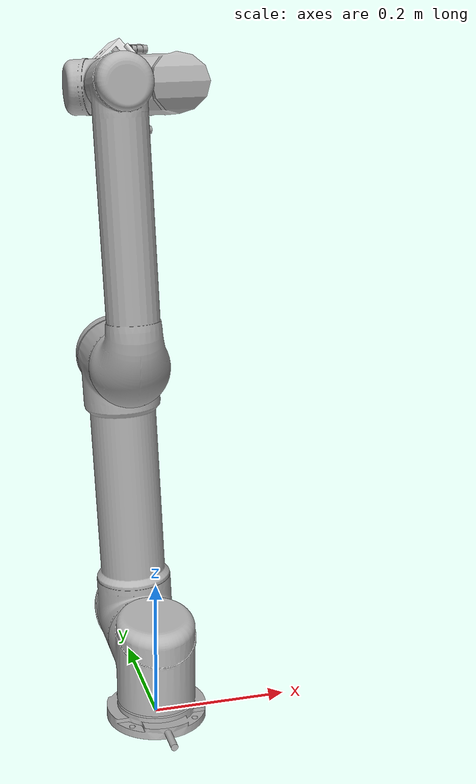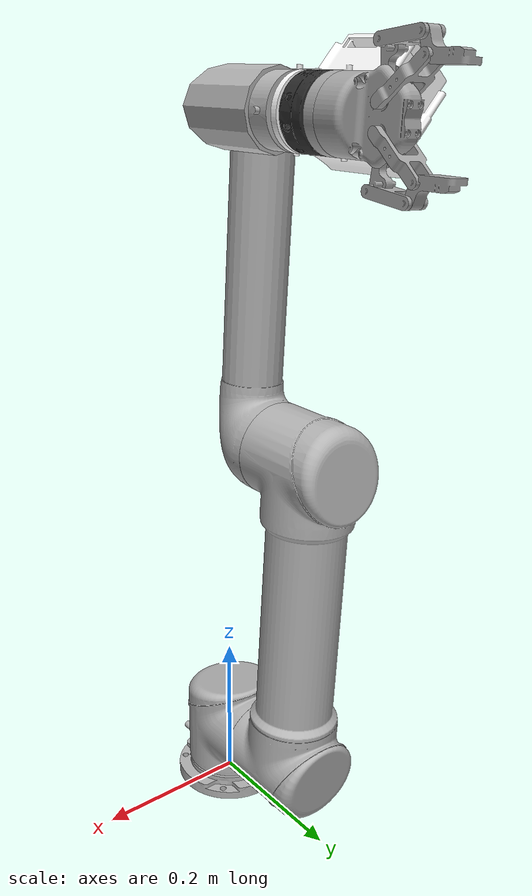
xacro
<?xml version="1.0" ?>
<!-- |    This document was autogenerated by xacro from ur5_joint_limited_robot.urdf.xacro | -->
<!-- |    EDITING THIS FILE BY HAND IS NOT RECOMMENDED                                 | -->
<robot name="ur5" xmlns:xacro="http://www.ros.org/wiki/xacro">
  <!-- ur5 arm -->
 <!-- common stuff -->
  <gazebo>
    <plugin filename="libgazebo_ros_control.so" name="ros_control">
    </plugin>
  </gazebo>

<property name="pi" value="3.1415926535898" />

  <!-- Inertia parameters -->
  <property name="base_mass" value="4.0" />  <!-- This mass might be incorrect -->
  <property name="shoulder_mass" value="3.7000" />
  <property name="upper_arm_mass" value="8.3930" />
  <property name="forearm_mass" value="2.2750" />
  <property name="wrist_1_mass" value="1.2190" />
  <property name="wrist_2_mass" value="1.2190" />
  <property name="wrist_3_mass" value="0.1879" />

  <property name="shoulder_cog" value="0.0 0.00193 -0.02561" />
  <property name="upper_arm_cog" value="0.0 -0.024201 0.2125" />
  <property name="forearm_cog" value="0.0 0.0265 0.11993" />
  <property name="wrist_1_cog" value="0.0 0.110949 0.01634" />
  <property name="wrist_2_cog" value="0.0 0.0018 0.11099" />
  <property name="wrist_3_cog" value="0.0 0.001159 0.0" />

  <!-- Kinematic model -->
  <!-- Properties from urcontrol.conf -->
  <property name="ur5_d1" value="0.089159" />
  <property name="ur5_a2" value="-0.42500" />
  <property name="ur5_a3" value="-0.39225" />
  <property name="ur5_d4" value="0.10915" />
  <property name="ur5_d5" value="0.09465" />
  <property name="ur5_d6" value="0.0823" />

  <!-- Arbitrary offsets for shoulder/elbow joints -->
  <property name="shoulder_offset" value="0.13585" />  <!-- measured from model -->
  <property name="elbow_offset" value="-0.1197" /> <!-- measured from model -->

  <!-- link lengths used in model -->
  <property name="shoulder_height" value="${ur5_d1}" />
  <property name="upper_arm_length" value="${-ur5_a2}" />
  <property name="forearm_length" value="${-ur5_a3}" />
  <property name="wrist_1_length" value="${ur5_d4 - elbow_offset - shoulder_offset}" />
  <property name="wrist_2_length" value="${ur5_d5}" />
  <property name="wrist_3_length" value="${ur5_d6}" />
  <!--property name="shoulder_height" value="0.089159" /-->
  <!--property name="shoulder_offset" value="0.13585" /-->  <!-- shoulder_offset - elbow_offset + wrist_1_length = 0.10915 -->
  <!--property name="upper_arm_length" value="0.42500" /-->
  <!--property name="elbow_offset" value="0.1197" /-->       <!-- CAD measured -->
  <!--property name="forearm_length" value="0.39225" /-->
  <!--property name="wrist_1_length" value="0.093" /-->     <!-- CAD measured -->
  <!--property name="wrist_2_length" value="0.09465" /-->   <!-- In CAD this distance is 0.930, but in the spec it is 0.09465 -->
  <!--property name="wrist_3_length" value="0.0823" /-->

  <property name="shoulder_radius" value="0.060" />   <!-- manually measured -->
  <property name="upper_arm_radius" value="0.054" />  <!-- manually measured -->
  <property name="elbow_radius" value="0.060" />      <!-- manually measured -->
  <property name="forearm_radius" value="0.040" />    <!-- manually measured -->
  <property name="wrist_radius" value="0.045" />      <!-- manually measured -->

  <link name="base_link">
    <visual>
      <geometry>
        <mesh filename="package://egomo_ur5/meshes/ur5/visual/base.dae"/>
      </geometry>
      <material name="LightGrey">
        <color rgba="0.7 0.7 0.7 1.0"/>
      </material>
    </visual>
    <collision>
      <geometry>
        <mesh filename="package://egomo_ur5/meshes/ur5/collision/base.stl"/>
      </geometry>
    </collision>
    <inertial>
      <mass value="4.0"/>
      <origin rpy="0 0 0" xyz="0.0 0.0 0.0"/>
      <inertia ixx="0.00443333156" ixy="0.0" ixz="0.0" iyy="0.00443333156" iyz="0.0" izz="0.0072"/>
    </inertial>
  </link>
  <joint name="shoulder_pan_joint" type="revolute">
    <parent link="base_link"/>
    <child link="shoulder_link"/>

    <origin rpy="0.0 0.0 0.0" xyz="0.0 0.0 ${shoulder_height}"/><!--origin rpy="0.0 0.0 0.7853981625" xyz="0.0 0.0 0.089159"/-->

    <axis xyz="0 0 1"/>
    <limit effort="150.0" lower="-3.14159265" upper="3.14159265" velocity="3.15"/>
    <dynamics damping="0.0" friction="0.0"/>
  </joint>
  <link name="shoulder_link">
    <visual>
      <geometry>
        <mesh filename="package://egomo_ur5/meshes/ur5/visual/shoulder.dae"/>
      </geometry>
      <material name="LightGrey">
        <color rgba="0.7 0.7 0.7 1.0"/>
      </material>
    </visual>
    <collision>
      <geometry>
        <mesh filename="package://egomo_ur5/meshes/ur5/collision/shoulder.stl"/>
      </geometry>
    </collision>
    <inertial>
      <mass value="3.7"/>
      <origin rpy="0 0 0" xyz="0.0 0.0 0.0"/>
      <inertia ixx="0.010267495893" ixy="0.0" ixz="0.0" iyy="0.010267495893" iyz="0.0" izz="0.00666"/>
    </inertial>
  </link>
  <joint name="shoulder_lift_joint" type="revolute">
    <parent link="shoulder_link"/>
    <child link="upper_arm_link"/>
    <origin rpy="0.0 1.570796326795 0.0" xyz="0.0 0.13585 0.0"/>
    <axis xyz="0 1 0"/>
    <limit effort="150.0" lower="-3.14159265" upper="-0.1" velocity="3.15"/>
    <dynamics damping="0.0" friction="0.0"/>
  </joint>
  <link name="upper_arm_link">
    <visual>
      <geometry>
        <mesh filename="package://egomo_ur5/meshes/ur5/visual/upper_arm.dae"/>
      </geometry>
      <material name="LightGrey">
        <color rgba="0.7 0.7 0.7 1.0"/>
      </material>
    </visual>
    <collision>
      <geometry>
        <mesh filename="package://egomo_ur5/meshes/ur5/collision/upper_arm.stl"/>
      </geometry>
    </collision>
    <inertial>
      <mass value="8.393"/>
      <origin rpy="0 0 0" xyz="0.0 0.0 0.28"/>
      <inertia ixx="0.22689067591" ixy="0.0" ixz="0.0" iyy="0.22689067591" iyz="0.0" izz="0.0151074"/>
    </inertial>
  </link>
  <joint name="elbow_joint" type="revolute">
    <parent link="upper_arm_link"/>
    <child link="forearm_link"/>
    <origin xyz="0.0 ${elbow_offset} ${upper_arm_length}" rpy="0.0 0.0 0.0" />
<!--origin rpy="0.0 0.0 0.0" xyz="0.0 -0.1197 0.425"/-->
    <axis xyz="0 1 0"/>
    <limit effort="150.0" lower="-3" upper="3" velocity="3.15"/> <!-- +/- 175 deg -->
    <dynamics damping="0.0" friction="0.0"/>
  </joint>
  <link name="forearm_link">
    <visual>
      <geometry>
        <mesh filename="package://egomo_ur5/meshes/ur5/visual/forearm.dae"/>
      </geometry>
      <material name="LightGrey">
        <color rgba="0.7 0.7 0.7 1.0"/>
      </material>
    </visual>
    <collision>
      <geometry>
        <mesh filename="package://egomo_ur5/meshes/ur5/collision/forearm.stl"/>
      </geometry>
    </collision>
    <inertial>
      <mass value="2.275"/>
      <origin rpy="0 0 0" xyz="0.0 0.0 0.25"/>
      <inertia ixx="0.049443313556" ixy="0.0" ixz="0.0" iyy="0.049443313556" iyz="0.0" izz="0.004095"/>
    </inertial>
  </link>
  <joint name="wrist_1_joint" type="revolute">
    <parent link="forearm_link"/>
    <child link="wrist_1_link"/>
    <origin xyz="0.0 0.0 ${forearm_length}" rpy="0.0 ${pi / 2.0} 0.0" />
    <!--origin rpy="0.0 1.570796326795 0.0" xyz="0.0 0.0 0.39225"/-->
    <axis xyz="0 1 0"/>
    <limit effort="28.0" lower="-3.92" upper="0.78" velocity="3.2"/><!-- -225 deg to 45 deg -->
    <dynamics damping="0.0" friction="0.0"/>
  </joint>
  <link name="wrist_1_link">
    <visual>
      <geometry>
        <mesh filename="package://egomo_ur5/meshes/ur5/visual/wrist_1.dae"/>
      </geometry>
      <material name="LightGrey">
        <color rgba="0.7 0.7 0.7 1.0"/>
      </material>
    </visual>
    <collision>
      <geometry>
        <mesh filename="package://egomo_ur5/meshes/ur5/collision/wrist_1.stl"/>
      </geometry>
    </collision>
    <inertial>
      <mass value="1.219"/>
      <origin rpy="0 0 0" xyz="0.0 0.0 0.0"/>
      <inertia ixx="0.111172755531" ixy="0.0" ixz="0.0" iyy="0.111172755531" iyz="0.0" izz="0.21942"/>
    </inertial>
  </link>
  <joint name="wrist_2_joint" type="revolute">
    <parent link="wrist_1_link"/>
    <child link="wrist_2_link"/>
    <!--origin rpy="0.0 0.0 0.0" xyz="0.0 0.093 0.0"/-->
      <origin xyz="0.0 ${wrist_1_length} 0.0" rpy="0.0 0.0 0.0" />
    <axis xyz="0 0 1"/>
    <limit effort="28.0" lower="-${pi}" upper="${pi}" velocity="3.15"/>
    <dynamics damping="0.0" friction="0.0"/>
  </joint>
  <link name="wrist_2_link">
    <visual>
      <geometry>
        <mesh filename="package://egomo_ur5/meshes/ur5/visual/wrist_2.dae"/>
      </geometry>
      <material name="LightGrey">
        <color rgba="0.7 0.7 0.7 1.0"/>
      </material>
    </visual>
    <collision>
      <geometry>
        <mesh filename="package://egomo_ur5/meshes/ur5/collision/wrist_2.stl"/>
      </geometry>
    </collision>
    <inertial>
      <mass value="1.219"/>
      <origin rpy="0 0 0" xyz="0.0 0.0 0.0"/>
      <inertia ixx="0.111172755531" ixy="0.0" ixz="0.0" iyy="0.111172755531" iyz="0.0" izz="0.21942"/>
    </inertial>
  </link>
  <joint name="wrist_3_joint" type="revolute">
    <parent link="wrist_2_link"/>
    <child link="wrist_3_link"/>
    <!--origin rpy="0.0 0.0 0.0" xyz="0.0 0.0 0.09465"/-->
      <origin xyz="0.0 0.0 ${wrist_2_length}" rpy="0.0 0.0 0.0" />
    <axis xyz="0 1 0"/>
    <limit effort="28.0" lower="-${pi}" upper="${pi}" velocity="3.15"/>
    <dynamics damping="0.0" friction="0.0"/>
  </joint>
  <link name="wrist_3_link">
    <visual>
      <geometry>
        <mesh filename="package://egomo_ur5/meshes/ur5/visual/wrist_3.dae"/>
      </geometry>
      <material name="LightGrey">
        <color rgba="0.7 0.7 0.7 1.0"/>
      </material>
    </visual>
    <collision>
      <geometry>
        <mesh filename="package://egomo_ur5/meshes/ur5/collision/wrist_3.stl"/>
      </geometry>
    </collision>
    <inertial>
      <mass value="0.1879"/>
      <origin rpy="0 0 0" xyz="0.0 0.0 0.0"/>
      <inertia ixx="0.0171364731454" ixy="0.0" ixz="0.0" iyy="0.0171364731454" iyz="0.0" izz="0.033822"/>
    </inertial>
  </link>
  <joint name="ee_fixed_joint" type="fixed">
    <parent link="wrist_3_link"/>
    <child link="ee_link"/>
    <!--origin rpy="-1.570796326795 0.0 0" xyz="0.0 0.0823 0.0"/-->
    <origin xyz="0.0 ${wrist_3_length} 0.0" rpy="-1.570796326795 0.0 0" />
  </joint>
  <link name="ee_link">
    <collision>
      <geometry>
        <box size="0.01 0.01 0.01"/>
      </geometry>
      <origin rpy="0 0 0" xyz="-0.01 0 0"/>
    </collision>
  </link>
<!--TRANSMISSION FOR THE ARM-->
  <transmission name="shoulder_pan_trans">
    <type>transmission_interface/SimpleTransmission</type>
    <joint name="shoulder_pan_joint">
      <hardwareInterface>PositionJointInterface</hardwareInterface>
    </joint>
    <actuator name="shoulder_pan_motor">
      <mechanicalReduction>1</mechanicalReduction>
    </actuator>
  </transmission>
  <transmission name="shoulder_lift_trans">
    <type>transmission_interface/SimpleTransmission</type>
    <joint name="shoulder_lift_joint">
      <hardwareInterface>PositionJointInterface</hardwareInterface>
    </joint>
    <actuator name="shoulder_lift_motor">
      <mechanicalReduction>1</mechanicalReduction>
    </actuator>
  </transmission>
  <transmission name="elbow_trans">
    <type>transmission_interface/SimpleTransmission</type>
    <joint name="elbow_joint">
      <hardwareInterface>PositionJointInterface</hardwareInterface>
    </joint>
    <actuator name="elbow_motor">
      <mechanicalReduction>1</mechanicalReduction>
    </actuator>
  </transmission>
  <transmission name="wrist_1_trans">
    <type>transmission_interface/SimpleTransmission</type>
    <joint name="wrist_1_joint">
      <hardwareInterface>PositionJointInterface</hardwareInterface>
    </joint>
    <actuator name="wrist_1_motor">
      <mechanicalReduction>1</mechanicalReduction>
    </actuator>
  </transmission>
  <transmission name="wrist_2_trans">
    <type>transmission_interface/SimpleTransmission</type>
    <joint name="wrist_2_joint">
      <hardwareInterface>PositionJointInterface</hardwareInterface>
    </joint>
    <actuator name="wrist_2_motor">
      <mechanicalReduction>1</mechanicalReduction>
    </actuator>
  </transmission>
  <transmission name="wrist_3_trans">
    <type>transmission_interface/SimpleTransmission</type>
    <joint name="wrist_3_joint">
      <hardwareInterface>PositionJointInterface</hardwareInterface>
    </joint>
    <actuator name="wrist_3_motor">
      <mechanicalReduction>1</mechanicalReduction>
    </actuator>
  </transmission>

  <link name="tool0"/>
  <joint name="wrist_3_link-tool0_fixed_joint" type="fixed">
    <origin rpy="-1.570796326795 0 0" xyz="0 0.0823 0"/>
    <parent link="wrist_3_link"/>
    <child link="tool0"/>
  </joint>
  <link name="world"/>
  <joint name="world_joint" type="fixed">
    <parent link="world"/>
    <child link="base_link"/>
    <origin rpy="0.0 0.0 0.0" xyz="0.0 0.0 0.0"/>
  </joint>

  <!-- force torque sensor (robotiq) -->

  <link name="fts_robotside">
    <inertial>
      <origin rpy="0 0 0" xyz="0 0 0"/>
      <mass value="0.65"/>
      <inertia ixx="0.000661171875" ixy="0" ixz="0" iyy="0.000661171875" iyz="0" izz="0.00117"/>
    </inertial>
    <visual>
      <origin rpy="0 ${pi} -1.570796326795" xyz="0 0 0.0375"/>
      <geometry>
        <mesh filename="package://egomo_ur5/meshes/robotiq-ft300/visual/ft300.dae"/>
      </geometry>
    </visual>
    <collision>
      <origin rpy="0 ${pi} -1.570796326795" xyz="0 0 0.0375"/>
      <geometry>
        <mesh filename="package://egomo_ur5/meshes/robotiq-ft300/collision/ft300.stl"/>
      </geometry>
    </collision>
  </link>

  <!-- virtual measurement frame -->
  <joint name="measurment_joint" type="fixed">
    <origin rpy="0 0 0" xyz="0 0 0.01625"/>
    <parent link="fts_robotside"/>
    <child link="robotiq_force_torque_frame_id"/>
  </joint>
  <link name="robotiq_force_torque_frame_id"/>

  <!-- toolside frame -->
  <joint name="toolside_joint" type="fixed">
    <origin rpy="0 0 0" xyz="0 0 0.0375"/>
    <parent link="fts_robotside"/>
    <child link="fts_toolside"/>
  </joint>
  <link name="fts_toolside"/>

  <link name="camera_robotside">
    <visual>
      <origin rpy="0 0 0" xyz="0 0 0"/>
      <geometry>
        <mesh filename="package://egomo_ur5/meshes/egomo-1/visual/egomo-1.dae"/>
      </geometry>
      <material name="white">
        <color rgba="1 1 1 1"/>
      </material>
    </visual>
    <collision>
      <origin rpy="0 0 0" xyz="0 0 0"/>
      <geometry>
        <mesh filename="package://egomo_ur5/meshes/egomo-1/collision/egomo-1.stl"/>
      </geometry>
    </collision>
  </link>

  <!-- Mount the force torque sensor (fts) to the robot -->

  <joint name="fts_to_robot" type="fixed" >
    <parent link="tool0" />
    <child link="fts_robotside" />
    <origin xyz="0 0 0.011" rpy="0 0 0" />
  </joint>

  <!-- Mount the cameras to the robot -->

  <joint name="camera_to_robot" type="fixed" >
    <parent link="tool0" />
    <child link="camera_robotside" />
    <origin xyz="0 0 0" rpy="0 0 0" />
  </joint>

<link name="robotiq_85_coupling">
  <visual>
    <geometry>
      <mesh filename="package://egomo_ur5/meshes/robotiq-2-finger-85/visual/gripper_coupling.dae"/>
    </geometry>
    <origin rpy="0 0 ${pi}" xyz="0 0 0"/>
  </visual>
  <collision>
    <geometry>
      <mesh filename="package://egomo_ur5/meshes/robotiq-2-finger-85/collision/gripper_coupling.stl"/>
    </geometry>
    <origin rpy="0 0 ${pi}" xyz="0 0 0"/>
  </collision>
</link>

<joint name="robotiq_85_base_joint" type="fixed">
  <parent link="robotiq_85_coupling"/>
  <child link="robotiq_85_base"/>
  <origin xyz="0 0 0.0109" rpy="0 0 0" />
</joint>

<link name="robotiq_85_base">
  <visual>
    <geometry>
      <mesh filename="package://egomo_ur5/meshes/robotiq-2-finger-85/visual/gripper_base.dae"/>
    </geometry>
    <origin rpy="0 0 ${pi}" xyz="0 0 0"/>
  </visual>
  <collision>
    <geometry>
      <mesh filename="package://egomo_ur5/meshes/robotiq-2-finger-85/collision/gripper_base.stl"/>
    </geometry>
    <origin rpy="0 0 ${pi}" xyz="0 0 0"/>
  </collision>
</link>

<link name="robotiq_85_finger_right_1">
  <visual>
    <geometry>
      <mesh filename="package://egomo_ur5/meshes/robotiq-2-finger-85/visual/gripper_finger_right_1.dae"/>
    </geometry>
    <origin rpy="0 0 ${pi}" xyz="0.0305864 0 -0.0549191"/>
  </visual>
  <collision>
    <geometry>
      <mesh filename="package://egomo_ur5/meshes/robotiq-2-finger-85/collision/gripper_finger_right_1.stl"/>
    </geometry>
    <origin rpy="0 0 ${pi}" xyz="0.0305864 0 -0.0549191"/>
  </collision>

</link>

<link name="robotiq_85_finger_right_2">
  <visual>
    <geometry>
      <mesh filename="package://egomo_ur5/meshes/robotiq-2-finger-85/visual/gripper_finger_right_2.dae"/>
    </geometry>
    <origin rpy="0 0 ${pi}" xyz="0.0621231 0 -0.0511592"/>
  </visual>
  <collision>
    <geometry>
      <mesh filename="package://egomo_ur5/meshes/robotiq-2-finger-85/collision/gripper_finger_right_2.stl"/>
    </geometry>
    <origin rpy="0 0 ${pi}" xyz="0.0621231 0 -0.0511592"/>
  </collision>

</link>

<link name="robotiq_85_finger_right_3">
  <visual>
    <geometry>
      <mesh filename="package://egomo_ur5/meshes/robotiq-2-finger-85/visual/gripper_finger_right_3.dae"/>
    </geometry>
    <origin rpy="0 0 ${pi}" xyz="0.0127161 0 -0.0613987"/>
  </visual>
  <collision>
    <geometry>
      <mesh filename="package://egomo_ur5/meshes/robotiq-2-finger-85/collision/gripper_finger_right_3.stl"/>
    </geometry>
    <origin rpy="0 0 ${pi}" xyz="0.0127161 0 -0.0613987"/>
  </collision>
 </link>

<link name="robotiq_85_finger_right_4">
  <visual>
    <geometry>
      <mesh filename="package://egomo_ur5/meshes/robotiq-2-finger-85/visual/gripper_finger_right_4.dae"/>
    </geometry>
    <origin rpy="0 0 ${pi}" xyz="0.0498492 0 -0.1048415"/>
  </visual>
  <collision>
    <geometry>
      <mesh filename="package://egomo_ur5/meshes/robotiq-2-finger-85/collision/gripper_finger_right_4.stl"/>
    </geometry>
    <origin rpy="0 0 ${pi}" xyz="0.0498492 0 -0.1048415"/>
  </collision>

</link>

<link name="robotiq_85_finger_left_1">
  <visual>
    <geometry>
      <mesh filename="package://egomo_ur5/meshes/robotiq-2-finger-85/visual/gripper_finger_left_1.dae"/>
    </geometry>
    <origin rpy="0 0 ${pi}" xyz="-0.0305864 0 -0.0549191"/>
  </visual>
  <collision>
    <geometry>
      <mesh filename="package://egomo_ur5/meshes/robotiq-2-finger-85/collision/gripper_finger_left_1.stl"/>
    </geometry>
    <origin rpy="0 0 ${pi}" xyz="-0.0305864 0 -0.0549191"/>
  </collision>

</link>

<link name="robotiq_85_finger_left_2">
  <visual>
    <geometry>
      <mesh filename="package://egomo_ur5/meshes/robotiq-2-finger-85/visual/gripper_finger_left_2.dae"/>
    </geometry>
    <origin rpy="0 0 ${pi}" xyz="-0.0621231 0 -0.0511592"/>
  </visual>
  <collision>
    <geometry>
      <mesh filename="package://egomo_ur5/meshes/robotiq-2-finger-85/collision/gripper_finger_left_2.stl"/>
    </geometry>
    <origin rpy="0 0 ${pi}" xyz="-0.0621231 0 -0.0511592"/>
  </collision>

</link>

<link name="robotiq_85_finger_left_3">
  <visual>
    <geometry>
      <mesh filename="package://egomo_ur5/meshes/robotiq-2-finger-85/visual/gripper_finger_left_3.dae"/>
    </geometry>
    <origin rpy="0 0 ${pi}" xyz="-0.0127161 0 -0.0613987"/>
  </visual>
  <collision>
    <geometry>
      <mesh filename="package://egomo_ur5/meshes/robotiq-2-finger-85/collision/gripper_finger_left_3.stl"/>
    </geometry>
    <origin rpy="0 0 ${pi}" xyz="-0.0127161 0 -0.0613987"/>
  </collision>

</link>

<link name="robotiq_85_finger_left_4">
  <visual>
    <geometry>
      <mesh filename="package://egomo_ur5/meshes/robotiq-2-finger-85/visual/gripper_finger_left_4.dae"/>
    </geometry>
    <origin rpy="0 0 ${pi}" xyz="-0.0498492 0 -0.1048415"/>
  </visual>
  <collision>
    <geometry>
      <mesh filename="package://egomo_ur5/meshes/robotiq-2-finger-85/collision/gripper_finger_left_4.stl"/>
    </geometry>
    <origin rpy="0 0 ${pi}" xyz="-0.0498492 0 -0.1048415"/>
  </collision>

</link>

<joint name="robotiq_85_finger_right_1_joint" type="continuous">
  <parent link="robotiq_85_base"/>
  <child link="robotiq_85_finger_right_1"/>
  <axis xyz="0 1 0"/>
  <origin rpy="0 0 0" xyz="-0.0305864 0 0.0549191"/>
  <limit effort="1000" lower="0" upper="0.811" velocity="2.0"/>
</joint>

<joint name="robotiq_85_finger_right_2_joint" type="fixed">
  <parent link="robotiq_85_finger_right_1"/>
  <child link="robotiq_85_finger_right_2"/>
  <axis xyz="0 1 0"/>
  <origin rpy="0 0 0" xyz="-0.0315367 0 -0.0037599"/>
</joint>

<joint name="robotiq_85_finger_right_3_joint" type="continuous">
  <parent link="robotiq_85_base"/>
  <child link="robotiq_85_finger_right_3"/>
  <axis xyz="0 1 0"/>
  <origin rpy="0 0 0" xyz="-0.0127161 0 0.0613987"/>
  <limit effort="1000" lower="0" upper="0.811" velocity="2.0"/>
  <mimic joint="robotiq_85_finger_right_1_joint" multiplier="1" offset="0"/>
</joint>

<joint name="robotiq_85_finger_right_4_joint" type="continuous">
  <parent link="robotiq_85_finger_right_3"/>
  <child link="robotiq_85_finger_right_4"/>
  <axis xyz="0 1 0"/>
  <origin rpy="0 0 0" xyz="-0.0371331 0 0.0434428"/>
  <mimic joint="robotiq_85_finger_right_1_joint" multiplier="-1" offset="0"/>
  <limit effort="1000" lower="-0.811" upper="0" velocity="2.0"/>
</joint>

<joint name="robotiq_85_finger_left_1_joint" type="continuous">
  <parent link="robotiq_85_base"/>
  <child link="robotiq_85_finger_left_1"/>
  <axis xyz="0 1 0"/>
  <origin rpy="0 0 0" xyz="0.0305864 0 0.0549191"/>
  <mimic joint="robotiq_85_finger_right_1_joint" multiplier="-1" offset="0"/>
  <limit effort="1000" lower="-0.811" upper="0" velocity="2.0"/>
</joint>

<joint name="robotiq_85_finger_left_2_joint" type="fixed">
  <parent link="robotiq_85_finger_left_1"/>
  <child link="robotiq_85_finger_left_2"/>
  <axis xyz="0 1 0"/>
  <origin rpy="0 0 0" xyz="0.0315367 0 -0.0037599"/>
</joint>

<joint name="robotiq_85_finger_left_3_joint" type="continuous">
  <parent link="robotiq_85_base"/>
  <child link="robotiq_85_finger_left_3"/>
  <axis xyz="0 1 0"/>
  <origin rpy="0 0 0" xyz="0.0127161 0 0.0613987"/>
  <mimic joint="robotiq_85_finger_right_1_joint" multiplier="-1" offset="0"/>
  <limit effort="1000" lower="-0.811" upper="0" velocity="2.0"/>
</joint>

<joint name="robotiq_85_finger_left_4_joint" type="continuous">
  <parent link="robotiq_85_finger_left_3"/>
  <child link="robotiq_85_finger_left_4"/>
  <axis xyz="0 1 0"/>
  <origin rpy="0 0 0" xyz="0.0371331 0 0.0434428"/>
  <mimic joint="robotiq_85_finger_right_1_joint" multiplier="1" offset="0"/>
  <limit effort="1000" lower="0" upper="0.811" velocity="2.0"/>
</joint>

 <!-- Mount the gripper to the force torque sensor -->
 <joint name="gripper_to_fts" type="fixed" >
    <parent link="fts_toolside" />
    <child link="robotiq_85_coupling" />
    <origin xyz="0 0 -0.003" rpy="0 0 0" />
  </joint>

</robot>
